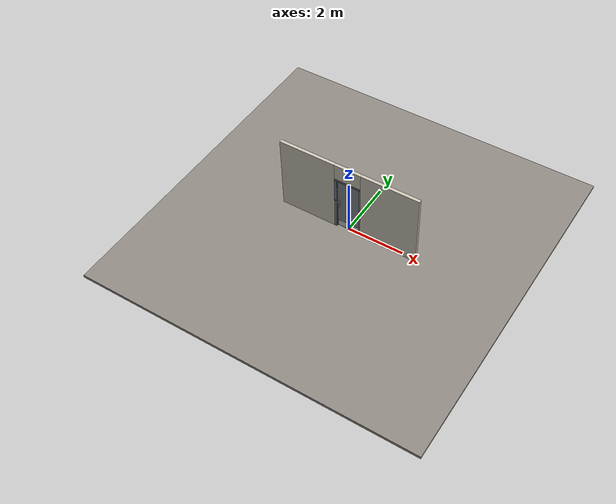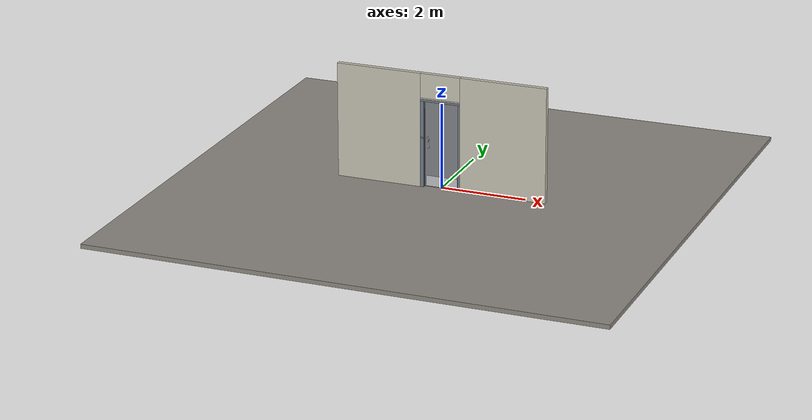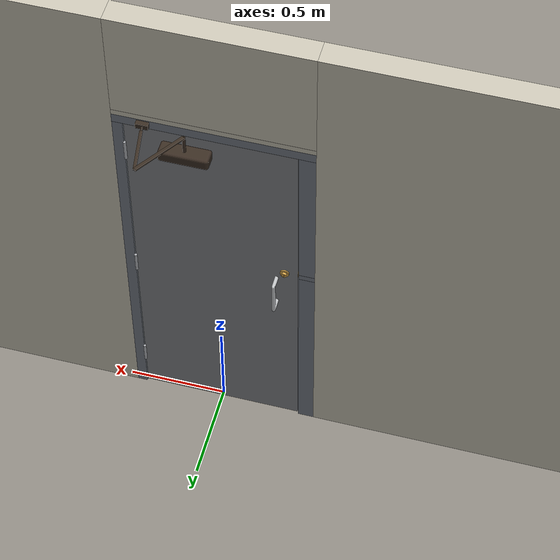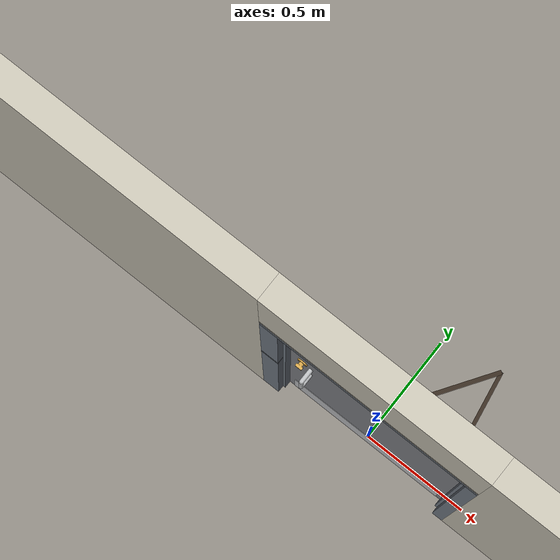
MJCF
<?xml version="1.0" ?>
<mujoco model="db0523_swing_single_full">
  <compiler angle="radian" meshdir="../../hardware" texturedir="../../textures" autolimits="true" inertiafromgeom="false"/>
  <option timestep="0.002" integrator="implicitfast" cone="elliptic" impratio="10" noslip_iterations="3">
    <flag multiccd="enable"/>
  </option>
  <size memory="16M"/>
  <default>
    <geom condim="4" solref="0.005 1" solimp="0.95 0.99 0.001"/>
    <joint solreflimit="0.005 1" solimplimit="0.95 0.99 0.001"/>
    <tendon solreflimit="0.005 1"/>
    <equality solref="0.002 1"/>
  </default>
  <visual>
    <headlight ambient="0.4 0.4 0.4" diffuse="0.7 0.7 0.7" specular="0.2 0.2 0.2"/>
    <quality shadowsize="4096"/>
    <map znear="0.01" zfar="60"/>
  </visual>
  <asset>
    <mesh name="closer_body_b226fdb10b" file="closer_body_b226fdb10b.obj"/>
    <mesh name="cyl_face_e9e5036966" file="cyl_face_e9e5036966.obj"/>
    <mesh name="hinge_e22b26c0c1" file="hinge_e22b26c0c1.obj"/>
    <mesh name="hinge_jamb_e1d088f8dc" file="hinge_jamb_e1d088f8dc.obj"/>
    <mesh name="pull_1e5d69a91a" file="pull_1e5d69a91a.obj"/>
    <mesh name="thumbturn_eb5c9899a3" file="thumbturn_eb5c9899a3.obj"/>
    <material name="mat_floor" rgba="0.55 0.53 0.5 1" specular="0.2" shininess="0.15" reflectance="0"/>
    <material name="mat_wall" rgba="0.78 0.76 0.7 1" specular="0.2" shininess="0.1" reflectance="0"/>
    <material name="mat_leaf" rgba="0.5 0.51 0.53 1" specular="0.2" shininess="0.44" reflectance="0"/>
    <material name="mat_hinge" rgba="0.65 0.66 0.68 1" specular="0.74" shininess="0.5" reflectance="0.36"/>
    <material name="mat_op_stainless" rgba="0.75 0.76 0.77 1" specular="0.8" shininess="0.65" reflectance="0.4"/>
    <material name="mat_deadbolt" rgba="0.85 0.66 0.3 1" specular="0.8" shininess="0.75" reflectance="0.4"/>
    <material name="mat_frame" rgba="0.45 0.48 0.52 1" specular="0.32" shininess="0.6" reflectance="0.08"/>
    <material name="mat_closer" rgba="0.22 0.17 0.13 1" specular="0.8" shininess="0.6" reflectance="0.4"/>
    <material name="mat_kick" rgba="0.75 0.76 0.77 1" specular="0.8" shininess="0.65" reflectance="0.4"/>
    <texture name="skybox" type="skybox" builtin="gradient" rgb1="0.6 0.7 0.85" rgb2="0.9 0.92 0.95" width="256" height="256"/>
  </asset>
  <worldbody>
    <light name="sun" pos="1.5 -2.5 4" dir="-0.3 0.5 -0.8" directional="true" diffuse="0.8 0.8 0.8" specular="0.3 0.3 0.3" castshadow="true"/>
    <light name="fill" pos="-1.5 2.5 3" dir="0.3 -0.5 -0.7" directional="true" diffuse="0.35 0.35 0.4" castshadow="false"/>
    <camera name="robot_view" pos="0 -2.570688 1.734312" xyaxes="1 0 0 0 0.26963 0.962964" fovy="52"/>
    <camera name="far_view" pos="0 2.513687 1.734312" xyaxes="-1 0 0 0 -0.26963 0.962964" fovy="52"/>
    <camera name="iso" pos="-1.932062 -2.163938 2.141063" xyaxes="0.741536 -0.670913 0 0.242917 0.268487 0.932151" fovy="46"/>
    <camera name="detail_handle" pos="-0.1205 -0.882 1.32" xyaxes="0.97561 0.219512 0 -0.070934 0.315262 0.94635" fovy="38"/>
    <geom name="floor" type="box" size="6 6 0.05" pos="0 0 -0.05" material="mat_floor" group="0" contype="1" conaffinity="1" friction="0.8 0.005 0.0001" density="2400"/>
    <geom name="wall_left" type="box" size="1.00475 0.0575 1.35" pos="-1.49525 -0.0285 1.35" material="mat_wall" group="0" contype="1" conaffinity="1" friction="0.6 0.005 0.0001" density="800"/>
    <geom name="wall_right" type="box" size="1.01975 0.0575 1.35" pos="1.48025 -0.0285 1.35" material="mat_wall" group="0" contype="1" conaffinity="1" friction="0.6 0.005 0.0001" density="800"/>
    <geom name="wall_header" type="box" size="0.4755 0.0575 0.2875" pos="-0.015 -0.0285 2.4125" material="mat_wall" group="0" contype="1" conaffinity="1" friction="0.6 0.005 0.0001" density="800"/>
    <geom name="hinge_0_jamb" type="mesh" mesh="hinge_jamb_e1d088f8dc" pos="0.4075 0.029 0.259" quat="0 0 0 1" material="mat_hinge" group="1" contype="0" conaffinity="0" density="7850"/>
    <geom name="hinge_1_jamb" type="mesh" mesh="hinge_jamb_e1d088f8dc" pos="0.4075 0.029 1.025" quat="0 0 0 1" material="mat_hinge" group="1" contype="0" conaffinity="0" density="7850"/>
    <geom name="hinge_2_jamb" type="mesh" mesh="hinge_jamb_e1d088f8dc" pos="0.4075 0.029 1.861" quat="0 0 0 1" material="mat_hinge" group="1" contype="0" conaffinity="0" density="7850"/>
    <geom name="leaf_deadbolt_strike_b" type="box" size="0.0155 0.003 0.0005" pos="-0.41 0 1.1615" quat="0.5 0.5 0.5 0.5" material="mat_deadbolt" group="1" contype="0" conaffinity="0" density="7800"/>
    <geom name="leaf_deadbolt_strike_l" type="box" size="0.003 0.0155 0.0005" pos="-0.41 -0.0125 1.18" quat="0.5 0.5 0.5 0.5" material="mat_deadbolt" group="1" contype="0" conaffinity="0" density="7800"/>
    <geom name="leaf_deadbolt_strike_t" type="box" size="0.0155 0.003 0.0005" pos="-0.41 0 1.1985" quat="0.5 0.5 0.5 0.5" material="mat_deadbolt" group="1" contype="0" conaffinity="0" density="7800"/>
    <geom name="leaf_deadbolt_strike_r" type="box" size="0.003 0.0155 0.0005" pos="-0.41 0.0125 1.18" quat="0.5 0.5 0.5 0.5" material="mat_deadbolt" group="1" contype="0" conaffinity="0" density="7800"/>
    <geom name="jamb_hinge" type="box" size="0.025 0.0575 1.0225" pos="0.4355 -0.0285 1.0225" material="mat_frame" group="0" contype="1" conaffinity="1" friction="0.6 0.005 0.0001" density="300"/>
    <geom name="strike_1180_wall_n" type="box" size="0.04 0.03825 0.0155" pos="-0.4505 -0.04775 1.18" material="mat_frame" group="0" contype="1" conaffinity="1" friction="0.6 0.005 0.0001" density="300"/>
    <geom name="strike_1180_wall_p" type="box" size="0.04 0.00975 0.0155" pos="-0.4505 0.01925 1.18" material="mat_frame" group="0" contype="1" conaffinity="1" friction="0.6 0.005 0.0001" density="300"/>
    <geom name="strike_1180_back" type="box" size="0.0253 0.0095 0.0155" pos="-0.4652 0 1.18" material="mat_frame" group="0" contype="1" conaffinity="1" friction="0.6 0.005 0.0001" density="300"/>
    <geom name="jamb_strike_0" type="box" size="0.04 0.0575 0.58225" pos="-0.4505 -0.0285 0.58225" material="mat_frame" group="0" contype="1" conaffinity="1" friction="0.6 0.005 0.0001" density="300"/>
    <geom name="jamb_strike_1" type="box" size="0.04 0.0575 0.42475" pos="-0.4505 -0.0285 1.62025" material="mat_frame" group="0" contype="1" conaffinity="1" friction="0.6 0.005 0.0001" density="300"/>
    <geom name="jamb_head" type="box" size="0.4755 0.0575 0.025" pos="-0.015 -0.0285 2.07" material="mat_frame" group="0" contype="1" conaffinity="1" friction="0.6 0.005 0.0001" density="300"/>
    <geom name="head_stud" type="box" size="0.4755 0.0575 0.015" pos="-0.015 -0.0285 2.11" material="mat_wall" group="0" contype="1" conaffinity="1" friction="0.6 0.005 0.0001" density="500"/>
    <geom name="stop_hinge" type="box" size="0.0055 0.016 1.0225" pos="0.405 -0.0385 1.0225" material="mat_frame" group="0" contype="1" conaffinity="1" friction="0.6 0.005 0.0001" density="300"/>
    <geom name="stop_strike" type="box" size="0.0055 0.016 1.0225" pos="-0.405 -0.0385 1.0225" material="mat_frame" group="0" contype="1" conaffinity="1" friction="0.6 0.005 0.0001" density="300"/>
    <geom name="stop_head" type="box" size="0.4105 0.016 0.0055" pos="0 -0.0385 2.0395" material="mat_frame" group="0" contype="1" conaffinity="1" friction="0.6 0.005 0.0001" density="300"/>
    <geom name="closer_bracket" type="box" size="0.03 0.012 0.014" pos="0.3105 0.041 2.075" material="mat_closer" group="1" contype="0" conaffinity="0" density="2700"/>
    <site name="approach_point" pos="0 -1.5 0" quat="1 0 0 0" size="0.05" rgba="0.2 0.9 0.2 0.5" group="4"/>
    <site name="goal_point" pos="0 1.5 0" quat="1 0 0 0" size="0.05" rgba="0.2 0.9 0.2 0.5" group="4"/>
    <site name="door_plane_center" pos="0 0 1.0225" quat="1 0 0 0" size="0.02" rgba="0.2 0.9 0.2 0.5" group="4"/>
    <body name="leaf" pos="0.4105 0 0">
      <inertial pos="-0.396534 0.006929 1.106522" mass="59.77673" quat="0.506291 -0.509118 -0.499307 -0.484934" diaginertia="3.110920462 24.648448357 27.689505864"/>
      <joint name="leaf_hinge" type="hinge" axis="0 0 -1" pos="-0.003 0.029 0" limited="true" range="0 1.745329" damping="10.160326" frictionloss="0.322071" stiffness="14.183889" springref="-2.144687" armature="0.02"/>
      <geom name="leaf_slab" type="box" size="0.4065 0.022 1.016" pos="-0.4095 0 1.025" material="mat_leaf" group="0" contype="1" conaffinity="1" friction="0.4 0.005 0.0001" density="1"/>
      <geom name="hinge_0" type="mesh" mesh="hinge_e22b26c0c1" pos="-0.003 0.029 0.259" quat="0 0 0 1" material="mat_hinge" group="1" contype="0" conaffinity="0" density="7850"/>
      <geom name="hinge_1" type="mesh" mesh="hinge_e22b26c0c1" pos="-0.003 0.029 1.025" quat="0 0 0 1" material="mat_hinge" group="1" contype="0" conaffinity="0" density="7850"/>
      <geom name="hinge_2" type="mesh" mesh="hinge_e22b26c0c1" pos="-0.003 0.029 1.861" quat="0 0 0 1" material="mat_hinge" group="1" contype="0" conaffinity="0" density="7850"/>
      <geom name="leaf_pull_n" type="mesh" mesh="pull_1e5d69a91a" pos="-0.711 -0.022 1.04" quat="0 0 -0.707107 0.707107" material="mat_op_stainless" group="1" contype="0" conaffinity="0" density="3000"/>
      <geom name="leaf_pull_col_n" type="capsule" size="0.0095 0.08" pos="-0.711 -0.082 1.04" material="mat_op_stainless" group="3" contype="1" conaffinity="1" rgba="0.8 0.3 0.3 0.25" friction="0.7 0.01 0.0001" density="3000"/>
      <geom name="leaf_pull_p" type="mesh" mesh="pull_1e5d69a91a" pos="-0.711 0.022 1.04" quat="0 0 0.707107 0.707107" material="mat_op_stainless" group="1" contype="0" conaffinity="0" density="3000"/>
      <geom name="leaf_pull_col_p" type="capsule" size="0.0095 0.08" pos="-0.711 0.082 1.04" material="mat_op_stainless" group="3" contype="1" conaffinity="1" rgba="0.8 0.3 0.3 0.25" friction="0.7 0.01 0.0001" density="3000"/>
      <geom name="leaf_deadbolt_faceplate" type="box" size="0.0006 0.014 0.0245" pos="-0.8154 0 1.18" material="mat_deadbolt" group="1" contype="0" conaffinity="0" density="8500"/>
      <geom name="leaf_deadbolt_cylinder_face" type="mesh" mesh="cyl_face_e9e5036966" pos="-0.751 0.022 1.18" quat="0 0 0.707107 0.707107" material="mat_deadbolt" group="1" contype="0" conaffinity="0" density="7100"/>
      <geom name="closer_body" type="mesh" mesh="closer_body_b226fdb10b" pos="-0.3 0.022 1.952" quat="0 0 0.707107 0.707107" material="mat_closer" group="1" contype="0" conaffinity="0" density="2000"/>
      <geom name="closer_body_col" type="box" size="0.12 0.04 0.03" pos="-0.3 0.062 1.952" material="mat_closer" group="3" contype="1" conaffinity="1" rgba="0.8 0.3 0.3 0.25" friction="0.6 0.005 0.0001" density="2000"/>
      <geom name="closer_pinion_shaft" type="cylinder" size="0.008 0.0615" pos="-0.3 0.064 2.0135" material="mat_closer" group="1" contype="0" conaffinity="0" density="2700"/>
      <geom name="kick_plate_n" type="box" size="0.3765 0.0008 0.125" pos="-0.4095 -0.0228 0.144" material="mat_kick" group="2" contype="0" conaffinity="0" density="7900"/>
      <site name="leaf_pull_grip_n" pos="-0.711 -0.082 1.04" quat="1 0 0 0" size="0.012" rgba="0.2 0.9 0.2 0.5" group="4"/>
      <site name="leaf_pull_grip_p" pos="-0.711 0.082 1.04" quat="1 0 0 0" size="0.012" rgba="0.2 0.9 0.2 0.5" group="4"/>
      <site name="leaf_edge_mid" pos="-0.816 0 1.016" quat="1 0 0 0" size="0.02" rgba="0.2 0.9 0.2 0.5" group="4"/>
      <body name="leaf_deadbolt" pos="-0.816 0 1.18">
        <inertial pos="0.0277 0 0" mass="0.18836" quat="0 0 0.707107 0.707107" diaginertia="0.000013829 0.000052194 0.000057986"/>
        <joint name="leaf_deadbolt_slide" type="slide" axis="1 0 0" limited="true" range="0 0.0254" damping="5" frictionloss="1.5" armature="0.1" ref="0.0254"/>
        <geom name="leaf_deadbolt_box" type="box" size="0.0277 0.008 0.0125" pos="0.0277 0 0" material="mat_deadbolt" group="0" contype="1" conaffinity="1" friction="0.3 0.005 0.0001" density="8500"/>
      </body>
      <body name="leaf_deadbolt_thumbturn" pos="-0.751 -0.022 1.18">
        <inertial pos="0 -0.012928 0" mass="0.178946" quat="0.707107 0.000001 0.000001 0.707107" diaginertia="0.000026045 0.000026215 0.000032438"/>
        <joint name="leaf_deadbolt_thumbturn_hinge" type="hinge" axis="0 1 0" limited="true" range="0 1.5708" damping="0.05" frictionloss="0.35" armature="0.005" ref="1.5708"/>
        <geom name="leaf_deadbolt_thumbturn_mesh" type="mesh" mesh="thumbturn_eb5c9899a3" pos="0 0 0" quat="0.500001 0.500001 -0.499999 0.499999" material="mat_deadbolt" group="0" contype="1" conaffinity="1" friction="0.6 0.005 0.0001" density="7100"/>
        <geom name="leaf_deadbolt_thumbturn_col" type="box" size="0.006 0.012 0.016" pos="0 -0.02 0" quat="0.707105 0 0.707108 0" material="mat_deadbolt" group="3" contype="1" conaffinity="1" rgba="0.8 0.3 0.3 0.25" friction="0.6 0.005 0.0001" density="7100"/>
      </body>
      <body name="closer_arm_main" pos="-0.3 0.064 2.075" quat="0.881485 0 0 0.472212">
        <inertial pos="0.14 0 0" mass="0.12096" quat="1 0 0 0" diaginertia="0.000003588 0.00079128 0.000792852"/>
        <joint name="closer_pinion" type="hinge" axis="0 0 1" limited="false" damping="0.01" armature="0.002"/>
        <geom name="closer_arm_main_geom" type="box" size="0.14 0.008 0.005" pos="0.14 0 0" material="mat_closer" group="1" contype="0" conaffinity="0" density="2700"/>
        <body name="closer_arm_fore" pos="0.28 0 0" quat="0.371222 0 0 -0.928544">
          <inertial pos="0.128088 0 0" mass="0.076531" quat="1 0 0 0" diaginertia="0.000001771 0.000437665 0.000438201"/>
          <joint name="closer_elbow" type="hinge" axis="0 0 1" limited="false" damping="0.01" armature="0.002"/>
          <geom name="closer_arm_fore_geom" type="box" size="0.1125 0.007 0.004" pos="0.1125 0 0" material="mat_closer" group="1" contype="0" conaffinity="0" density="2700"/>
          <geom name="closer_fore_neck" type="box" size="0.0175 0.003 0.003" pos="0.2425 0 0" material="mat_closer" group="1" contype="0" conaffinity="0" density="2700"/>
          <geom name="closer_fore_pivot" type="cylinder" size="0.005 0.012" pos="0.26 0 0" material="mat_closer" group="1" contype="0" conaffinity="0" density="2700"/>
        </body>
      </body>
    </body>
  </worldbody>
  <equality>
    <joint name="leaf_deadbolt_couple" joint1="leaf_deadbolt_slide" joint2="leaf_deadbolt_thumbturn_hinge" polycoef="0 0.01617 0 0 0" active="true"/>
    <connect name="closer_arm_connect" body1="closer_arm_fore" body2="world" anchor="0.26 0 0" active="true"/>
  </equality>
  <contact>
    <exclude body1="leaf_deadbolt" body2="leaf_deadbolt_thumbturn"/>
    <exclude body1="closer_arm_main" body2="leaf"/>
    <exclude body1="closer_arm_fore" body2="leaf"/>
    <exclude body1="closer_arm_main" body2="closer_arm_fore"/>
  </contact>
  <sensor>
    <jointpos name="leaf_hinge_pos" joint="leaf_hinge"/>
    <jointvel name="leaf_hinge_vel" joint="leaf_hinge"/>
    <jointpos name="leaf_deadbolt_slide_pos" joint="leaf_deadbolt_slide"/>
    <jointvel name="leaf_deadbolt_slide_vel" joint="leaf_deadbolt_slide"/>
    <jointpos name="leaf_deadbolt_thumbturn_hinge_pos" joint="leaf_deadbolt_thumbturn_hinge"/>
    <jointvel name="leaf_deadbolt_thumbturn_hinge_vel" joint="leaf_deadbolt_thumbturn_hinge"/>
  </sensor>
</mujoco>
